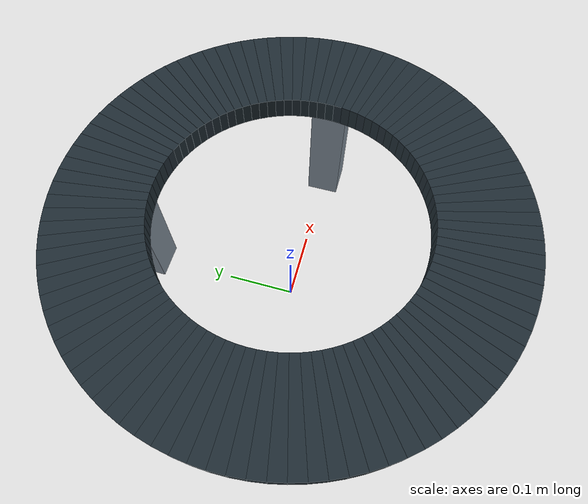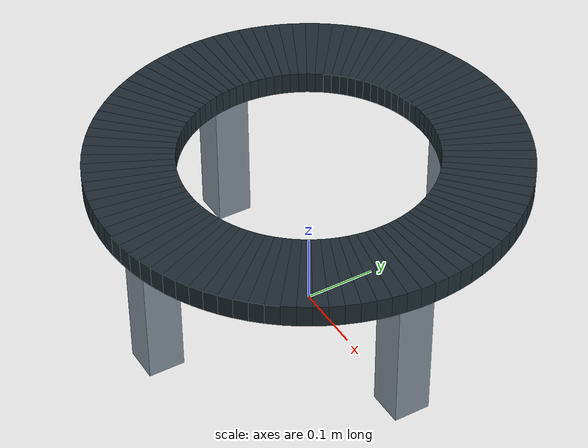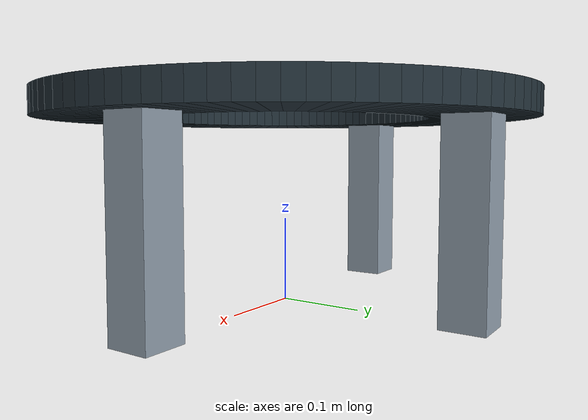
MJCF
<mujoco model="circular_conveyor">
  <compiler angle="radian" />
  <custom>
    <numeric name="conveyor_path_parameters" data="0.23 0.06" />
  </custom>
  <asset>
    <mesh name="belt_mesh_0" vertex="0.170000000 0.000000000 -0.015000000 0.290000000 0.000000000 -0.015000000 0.289379088 0.018966907 -0.015000000 0.169636017 0.011118532 -0.015000000 0.170000000 0.000000000 0.015000000 0.290000000 0.000000000 0.015000000 0.289379088 0.018966907 0.015000000 0.169636017 0.011118532 0.015000000" />
    <mesh name="belt_mesh_1" vertex="0.169636017 0.011118532 -0.015000000 0.289379088 0.018966907 -0.015000000 0.287519010 0.037852596 -0.015000000 0.168545626 0.022189453 -0.015000000 0.169636017 0.011118532 0.015000000 0.289379088 0.018966907 0.015000000 0.287519010 0.037852596 0.015000000 0.168545626 0.022189453 0.015000000" />
    <mesh name="belt_mesh_2" vertex="0.168545626 0.022189453 -0.015000000 0.287519010 0.037852596 -0.015000000 0.284427731 0.056576193 -0.015000000 0.166733498 0.033165355 -0.015000000 0.168545626 0.022189453 0.015000000 0.287519010 0.037852596 0.015000000 0.284427731 0.056576193 0.015000000 0.166733498 0.033165355 0.015000000" />
    <mesh name="belt_mesh_3" vertex="0.166733498 0.033165355 -0.015000000 0.284427731 0.056576193 -0.015000000 0.280118490 0.075057523 -0.015000000 0.164207390 0.043999238 -0.015000000 0.166733498 0.033165355 0.015000000 0.284427731 0.056576193 0.015000000 0.280118490 0.075057523 0.015000000 0.164207390 0.043999238 0.015000000" />
    <mesh name="belt_mesh_4" vertex="0.164207390 0.043999238 -0.015000000 0.280118490 0.075057523 -0.015000000 0.274609738 0.093217445 -0.015000000 0.160978122 0.054644709 -0.015000000 0.164207390 0.043999238 0.015000000 0.280118490 0.075057523 0.015000000 0.274609738 0.093217445 0.015000000 0.160978122 0.054644709 0.015000000" />
    <mesh name="belt_mesh_5" vertex="0.160978122 0.054644709 -0.015000000 0.274609738 0.093217445 -0.015000000 0.267925064 0.110978195 -0.015000000 0.157059521 0.065056184 -0.015000000 0.160978122 0.054644709 0.015000000 0.274609738 0.093217445 0.015000000 0.267925064 0.110978195 0.015000000 0.157059521 0.065056184 0.015000000" />
    <mesh name="belt_mesh_6" vertex="0.157059521 0.065056184 -0.015000000 0.267925064 0.110978195 -0.015000000 0.260093095 0.128263720 -0.015000000 0.152468366 0.075189077 -0.015000000 0.157059521 0.065056184 0.015000000 0.267925064 0.110978195 0.015000000 0.260093095 0.128263720 0.015000000 0.152468366 0.075189077 0.015000000" />
    <mesh name="belt_mesh_7" vertex="0.152468366 0.075189077 -0.015000000 0.260093095 0.128263720 -0.015000000 0.251147367 0.145000000 -0.015000000 0.147224319 0.085000000 -0.015000000 0.152468366 0.075189077 0.015000000 0.260093095 0.128263720 0.015000000 0.251147367 0.145000000 0.015000000 0.147224319 0.085000000 0.015000000" />
    <mesh name="belt_mesh_8" vertex="0.147224319 0.085000000 -0.015000000 0.251147367 0.145000000 -0.015000000 0.241126188 0.161115368 -0.015000000 0.141349834 0.094446940 -0.015000000 0.147224319 0.085000000 0.015000000 0.251147367 0.145000000 0.015000000 0.241126188 0.161115368 0.015000000 0.141349834 0.094446940 0.015000000" />
    <mesh name="belt_mesh_9" vertex="0.141349834 0.094446940 -0.015000000 0.241126188 0.161115368 -0.015000000 0.230072469 0.176540814 -0.015000000 0.134870068 0.103489443 -0.015000000 0.141349834 0.094446940 0.015000000 0.241126188 0.161115368 0.015000000 0.230072469 0.176540814 0.015000000 0.134870068 0.103489443 0.015000000" />
    <mesh name="belt_mesh_10" vertex="0.134870068 0.103489443 -0.015000000 0.230072469 0.176540814 -0.015000000 0.218033544 0.191210286 -0.015000000 0.127812767 0.112088789 -0.015000000 0.134870068 0.103489443 0.015000000 0.230072469 0.176540814 0.015000000 0.218033544 0.191210286 0.015000000 0.127812767 0.112088789 0.015000000" />
    <mesh name="belt_mesh_11" vertex="0.127812767 0.112088789 -0.015000000 0.218033544 0.191210286 -0.015000000 0.205060967 0.205060967 -0.015000000 0.120208153 0.120208153 -0.015000000 0.127812767 0.112088789 0.015000000 0.218033544 0.191210286 0.015000000 0.205060967 0.205060967 0.015000000 0.120208153 0.120208153 0.015000000" />
    <mesh name="belt_mesh_12" vertex="0.120208153 0.120208153 -0.015000000 0.205060967 0.205060967 -0.015000000 0.191210286 0.218033544 -0.015000000 0.112088789 0.127812767 -0.015000000 0.120208153 0.120208153 0.015000000 0.205060967 0.205060967 0.015000000 0.191210286 0.218033544 0.015000000 0.112088789 0.127812767 0.015000000" />
    <mesh name="belt_mesh_13" vertex="0.112088789 0.127812767 -0.015000000 0.191210286 0.218033544 -0.015000000 0.176540814 0.230072469 -0.015000000 0.103489443 0.134870068 -0.015000000 0.112088789 0.127812767 0.015000000 0.191210286 0.218033544 0.015000000 0.176540814 0.230072469 0.015000000 0.103489443 0.134870068 0.015000000" />
    <mesh name="belt_mesh_14" vertex="0.103489443 0.134870068 -0.015000000 0.176540814 0.230072469 -0.015000000 0.161115368 0.241126188 -0.015000000 0.094446940 0.141349834 -0.015000000 0.103489443 0.134870068 0.015000000 0.176540814 0.230072469 0.015000000 0.161115368 0.241126188 0.015000000 0.094446940 0.141349834 0.015000000" />
    <mesh name="belt_mesh_15" vertex="0.094446940 0.141349834 -0.015000000 0.161115368 0.241126188 -0.015000000 0.145000000 0.251147367 -0.015000000 0.085000000 0.147224319 -0.015000000 0.094446940 0.141349834 0.015000000 0.161115368 0.241126188 0.015000000 0.145000000 0.251147367 0.015000000 0.085000000 0.147224319 0.015000000" />
    <mesh name="belt_mesh_16" vertex="0.085000000 0.147224319 -0.015000000 0.145000000 0.251147367 -0.015000000 0.128263720 0.260093095 -0.015000000 0.075189077 0.152468366 -0.015000000 0.085000000 0.147224319 0.015000000 0.145000000 0.251147367 0.015000000 0.128263720 0.260093095 0.015000000 0.075189077 0.152468366 0.015000000" />
    <mesh name="belt_mesh_17" vertex="0.075189077 0.152468366 -0.015000000 0.128263720 0.260093095 -0.015000000 0.110978195 0.267925064 -0.015000000 0.065056184 0.157059521 -0.015000000 0.075189077 0.152468366 0.015000000 0.128263720 0.260093095 0.015000000 0.110978195 0.267925064 0.015000000 0.065056184 0.157059521 0.015000000" />
    <mesh name="belt_mesh_18" vertex="0.065056184 0.157059521 -0.015000000 0.110978195 0.267925064 -0.015000000 0.093217445 0.274609738 -0.015000000 0.054644709 0.160978122 -0.015000000 0.065056184 0.157059521 0.015000000 0.110978195 0.267925064 0.015000000 0.093217445 0.274609738 0.015000000 0.054644709 0.160978122 0.015000000" />
    <mesh name="belt_mesh_19" vertex="0.054644709 0.160978122 -0.015000000 0.093217445 0.274609738 -0.015000000 0.075057523 0.280118490 -0.015000000 0.043999238 0.164207390 -0.015000000 0.054644709 0.160978122 0.015000000 0.093217445 0.274609738 0.015000000 0.075057523 0.280118490 0.015000000 0.043999238 0.164207390 0.015000000" />
    <mesh name="belt_mesh_20" vertex="0.043999238 0.164207390 -0.015000000 0.075057523 0.280118490 -0.015000000 0.056576193 0.284427731 -0.015000000 0.033165355 0.166733498 -0.015000000 0.043999238 0.164207390 0.015000000 0.075057523 0.280118490 0.015000000 0.056576193 0.284427731 0.015000000 0.033165355 0.166733498 0.015000000" />
    <mesh name="belt_mesh_21" vertex="0.033165355 0.166733498 -0.015000000 0.056576193 0.284427731 -0.015000000 0.037852596 0.287519010 -0.015000000 0.022189453 0.168545626 -0.015000000 0.033165355 0.166733498 0.015000000 0.056576193 0.284427731 0.015000000 0.037852596 0.287519010 0.015000000 0.022189453 0.168545626 0.015000000" />
    <mesh name="belt_mesh_22" vertex="0.022189453 0.168545626 -0.015000000 0.037852596 0.287519010 -0.015000000 0.018966907 0.289379088 -0.015000000 0.011118532 0.169636017 -0.015000000 0.022189453 0.168545626 0.015000000 0.037852596 0.287519010 0.015000000 0.018966907 0.289379088 0.015000000 0.011118532 0.169636017 0.015000000" />
    <mesh name="belt_mesh_23" vertex="0.011118532 0.169636017 -0.015000000 0.018966907 0.289379088 -0.015000000 0.000000000 0.290000000 -0.015000000 0.000000000 0.170000000 -0.015000000 0.011118532 0.169636017 0.015000000 0.018966907 0.289379088 0.015000000 0.000000000 0.290000000 0.015000000 0.000000000 0.170000000 0.015000000" />
    <mesh name="belt_mesh_24" vertex="0.000000000 0.170000000 -0.015000000 0.000000000 0.290000000 -0.015000000 -0.018966907 0.289379088 -0.015000000 -0.011118532 0.169636017 -0.015000000 0.000000000 0.170000000 0.015000000 0.000000000 0.290000000 0.015000000 -0.018966907 0.289379088 0.015000000 -0.011118532 0.169636017 0.015000000" />
    <mesh name="belt_mesh_25" vertex="-0.011118532 0.169636017 -0.015000000 -0.018966907 0.289379088 -0.015000000 -0.037852596 0.287519010 -0.015000000 -0.022189453 0.168545626 -0.015000000 -0.011118532 0.169636017 0.015000000 -0.018966907 0.289379088 0.015000000 -0.037852596 0.287519010 0.015000000 -0.022189453 0.168545626 0.015000000" />
    <mesh name="belt_mesh_26" vertex="-0.022189453 0.168545626 -0.015000000 -0.037852596 0.287519010 -0.015000000 -0.056576193 0.284427731 -0.015000000 -0.033165355 0.166733498 -0.015000000 -0.022189453 0.168545626 0.015000000 -0.037852596 0.287519010 0.015000000 -0.056576193 0.284427731 0.015000000 -0.033165355 0.166733498 0.015000000" />
    <mesh name="belt_mesh_27" vertex="-0.033165355 0.166733498 -0.015000000 -0.056576193 0.284427731 -0.015000000 -0.075057523 0.280118490 -0.015000000 -0.043999238 0.164207390 -0.015000000 -0.033165355 0.166733498 0.015000000 -0.056576193 0.284427731 0.015000000 -0.075057523 0.280118490 0.015000000 -0.043999238 0.164207390 0.015000000" />
    <mesh name="belt_mesh_28" vertex="-0.043999238 0.164207390 -0.015000000 -0.075057523 0.280118490 -0.015000000 -0.093217445 0.274609738 -0.015000000 -0.054644709 0.160978122 -0.015000000 -0.043999238 0.164207390 0.015000000 -0.075057523 0.280118490 0.015000000 -0.093217445 0.274609738 0.015000000 -0.054644709 0.160978122 0.015000000" />
    <mesh name="belt_mesh_29" vertex="-0.054644709 0.160978122 -0.015000000 -0.093217445 0.274609738 -0.015000000 -0.110978195 0.267925064 -0.015000000 -0.065056184 0.157059521 -0.015000000 -0.054644709 0.160978122 0.015000000 -0.093217445 0.274609738 0.015000000 -0.110978195 0.267925064 0.015000000 -0.065056184 0.157059521 0.015000000" />
    <mesh name="belt_mesh_30" vertex="-0.065056184 0.157059521 -0.015000000 -0.110978195 0.267925064 -0.015000000 -0.128263720 0.260093095 -0.015000000 -0.075189077 0.152468366 -0.015000000 -0.065056184 0.157059521 0.015000000 -0.110978195 0.267925064 0.015000000 -0.128263720 0.260093095 0.015000000 -0.075189077 0.152468366 0.015000000" />
    <mesh name="belt_mesh_31" vertex="-0.075189077 0.152468366 -0.015000000 -0.128263720 0.260093095 -0.015000000 -0.145000000 0.251147367 -0.015000000 -0.085000000 0.147224319 -0.015000000 -0.075189077 0.152468366 0.015000000 -0.128263720 0.260093095 0.015000000 -0.145000000 0.251147367 0.015000000 -0.085000000 0.147224319 0.015000000" />
    <mesh name="belt_mesh_32" vertex="-0.085000000 0.147224319 -0.015000000 -0.145000000 0.251147367 -0.015000000 -0.161115368 0.241126188 -0.015000000 -0.094446940 0.141349834 -0.015000000 -0.085000000 0.147224319 0.015000000 -0.145000000 0.251147367 0.015000000 -0.161115368 0.241126188 0.015000000 -0.094446940 0.141349834 0.015000000" />
    <mesh name="belt_mesh_33" vertex="-0.094446940 0.141349834 -0.015000000 -0.161115368 0.241126188 -0.015000000 -0.176540814 0.230072469 -0.015000000 -0.103489443 0.134870068 -0.015000000 -0.094446940 0.141349834 0.015000000 -0.161115368 0.241126188 0.015000000 -0.176540814 0.230072469 0.015000000 -0.103489443 0.134870068 0.015000000" />
    <mesh name="belt_mesh_34" vertex="-0.103489443 0.134870068 -0.015000000 -0.176540814 0.230072469 -0.015000000 -0.191210286 0.218033544 -0.015000000 -0.112088789 0.127812767 -0.015000000 -0.103489443 0.134870068 0.015000000 -0.176540814 0.230072469 0.015000000 -0.191210286 0.218033544 0.015000000 -0.112088789 0.127812767 0.015000000" />
    <mesh name="belt_mesh_35" vertex="-0.112088789 0.127812767 -0.015000000 -0.191210286 0.218033544 -0.015000000 -0.205060967 0.205060967 -0.015000000 -0.120208153 0.120208153 -0.015000000 -0.112088789 0.127812767 0.015000000 -0.191210286 0.218033544 0.015000000 -0.205060967 0.205060967 0.015000000 -0.120208153 0.120208153 0.015000000" />
    <mesh name="belt_mesh_36" vertex="-0.120208153 0.120208153 -0.015000000 -0.205060967 0.205060967 -0.015000000 -0.218033544 0.191210286 -0.015000000 -0.127812767 0.112088789 -0.015000000 -0.120208153 0.120208153 0.015000000 -0.205060967 0.205060967 0.015000000 -0.218033544 0.191210286 0.015000000 -0.127812767 0.112088789 0.015000000" />
    <mesh name="belt_mesh_37" vertex="-0.127812767 0.112088789 -0.015000000 -0.218033544 0.191210286 -0.015000000 -0.230072469 0.176540814 -0.015000000 -0.134870068 0.103489443 -0.015000000 -0.127812767 0.112088789 0.015000000 -0.218033544 0.191210286 0.015000000 -0.230072469 0.176540814 0.015000000 -0.134870068 0.103489443 0.015000000" />
    <mesh name="belt_mesh_38" vertex="-0.134870068 0.103489443 -0.015000000 -0.230072469 0.176540814 -0.015000000 -0.241126188 0.161115368 -0.015000000 -0.141349834 0.094446940 -0.015000000 -0.134870068 0.103489443 0.015000000 -0.230072469 0.176540814 0.015000000 -0.241126188 0.161115368 0.015000000 -0.141349834 0.094446940 0.015000000" />
    <mesh name="belt_mesh_39" vertex="-0.141349834 0.094446940 -0.015000000 -0.241126188 0.161115368 -0.015000000 -0.251147367 0.145000000 -0.015000000 -0.147224319 0.085000000 -0.015000000 -0.141349834 0.094446940 0.015000000 -0.241126188 0.161115368 0.015000000 -0.251147367 0.145000000 0.015000000 -0.147224319 0.085000000 0.015000000" />
    <mesh name="belt_mesh_40" vertex="-0.147224319 0.085000000 -0.015000000 -0.251147367 0.145000000 -0.015000000 -0.260093095 0.128263720 -0.015000000 -0.152468366 0.075189077 -0.015000000 -0.147224319 0.085000000 0.015000000 -0.251147367 0.145000000 0.015000000 -0.260093095 0.128263720 0.015000000 -0.152468366 0.075189077 0.015000000" />
    <mesh name="belt_mesh_41" vertex="-0.152468366 0.075189077 -0.015000000 -0.260093095 0.128263720 -0.015000000 -0.267925064 0.110978195 -0.015000000 -0.157059521 0.065056184 -0.015000000 -0.152468366 0.075189077 0.015000000 -0.260093095 0.128263720 0.015000000 -0.267925064 0.110978195 0.015000000 -0.157059521 0.065056184 0.015000000" />
    <mesh name="belt_mesh_42" vertex="-0.157059521 0.065056184 -0.015000000 -0.267925064 0.110978195 -0.015000000 -0.274609738 0.093217445 -0.015000000 -0.160978122 0.054644709 -0.015000000 -0.157059521 0.065056184 0.015000000 -0.267925064 0.110978195 0.015000000 -0.274609738 0.093217445 0.015000000 -0.160978122 0.054644709 0.015000000" />
    <mesh name="belt_mesh_43" vertex="-0.160978122 0.054644709 -0.015000000 -0.274609738 0.093217445 -0.015000000 -0.280118490 0.075057523 -0.015000000 -0.164207390 0.043999238 -0.015000000 -0.160978122 0.054644709 0.015000000 -0.274609738 0.093217445 0.015000000 -0.280118490 0.075057523 0.015000000 -0.164207390 0.043999238 0.015000000" />
    <mesh name="belt_mesh_44" vertex="-0.164207390 0.043999238 -0.015000000 -0.280118490 0.075057523 -0.015000000 -0.284427731 0.056576193 -0.015000000 -0.166733498 0.033165355 -0.015000000 -0.164207390 0.043999238 0.015000000 -0.280118490 0.075057523 0.015000000 -0.284427731 0.056576193 0.015000000 -0.166733498 0.033165355 0.015000000" />
    <mesh name="belt_mesh_45" vertex="-0.166733498 0.033165355 -0.015000000 -0.284427731 0.056576193 -0.015000000 -0.287519010 0.037852596 -0.015000000 -0.168545626 0.022189453 -0.015000000 -0.166733498 0.033165355 0.015000000 -0.284427731 0.056576193 0.015000000 -0.287519010 0.037852596 0.015000000 -0.168545626 0.022189453 0.015000000" />
    <mesh name="belt_mesh_46" vertex="-0.168545626 0.022189453 -0.015000000 -0.287519010 0.037852596 -0.015000000 -0.289379088 0.018966907 -0.015000000 -0.169636017 0.011118532 -0.015000000 -0.168545626 0.022189453 0.015000000 -0.287519010 0.037852596 0.015000000 -0.289379088 0.018966907 0.015000000 -0.169636017 0.011118532 0.015000000" />
    <mesh name="belt_mesh_47" vertex="-0.169636017 0.011118532 -0.015000000 -0.289379088 0.018966907 -0.015000000 -0.290000000 0.000000000 -0.015000000 -0.170000000 0.000000000 -0.015000000 -0.169636017 0.011118532 0.015000000 -0.289379088 0.018966907 0.015000000 -0.290000000 0.000000000 0.015000000 -0.170000000 0.000000000 0.015000000" />
    <mesh name="belt_mesh_48" vertex="-0.170000000 0.000000000 -0.015000000 -0.290000000 0.000000000 -0.015000000 -0.289379088 -0.018966907 -0.015000000 -0.169636017 -0.011118532 -0.015000000 -0.170000000 0.000000000 0.015000000 -0.290000000 0.000000000 0.015000000 -0.289379088 -0.018966907 0.015000000 -0.169636017 -0.011118532 0.015000000" />
    <mesh name="belt_mesh_49" vertex="-0.169636017 -0.011118532 -0.015000000 -0.289379088 -0.018966907 -0.015000000 -0.287519010 -0.037852596 -0.015000000 -0.168545626 -0.022189453 -0.015000000 -0.169636017 -0.011118532 0.015000000 -0.289379088 -0.018966907 0.015000000 -0.287519010 -0.037852596 0.015000000 -0.168545626 -0.022189453 0.015000000" />
    <mesh name="belt_mesh_50" vertex="-0.168545626 -0.022189453 -0.015000000 -0.287519010 -0.037852596 -0.015000000 -0.284427731 -0.056576193 -0.015000000 -0.166733498 -0.033165355 -0.015000000 -0.168545626 -0.022189453 0.015000000 -0.287519010 -0.037852596 0.015000000 -0.284427731 -0.056576193 0.015000000 -0.166733498 -0.033165355 0.015000000" />
    <mesh name="belt_mesh_51" vertex="-0.166733498 -0.033165355 -0.015000000 -0.284427731 -0.056576193 -0.015000000 -0.280118490 -0.075057523 -0.015000000 -0.164207390 -0.043999238 -0.015000000 -0.166733498 -0.033165355 0.015000000 -0.284427731 -0.056576193 0.015000000 -0.280118490 -0.075057523 0.015000000 -0.164207390 -0.043999238 0.015000000" />
    <mesh name="belt_mesh_52" vertex="-0.164207390 -0.043999238 -0.015000000 -0.280118490 -0.075057523 -0.015000000 -0.274609738 -0.093217445 -0.015000000 -0.160978122 -0.054644709 -0.015000000 -0.164207390 -0.043999238 0.015000000 -0.280118490 -0.075057523 0.015000000 -0.274609738 -0.093217445 0.015000000 -0.160978122 -0.054644709 0.015000000" />
    <mesh name="belt_mesh_53" vertex="-0.160978122 -0.054644709 -0.015000000 -0.274609738 -0.093217445 -0.015000000 -0.267925064 -0.110978195 -0.015000000 -0.157059521 -0.065056184 -0.015000000 -0.160978122 -0.054644709 0.015000000 -0.274609738 -0.093217445 0.015000000 -0.267925064 -0.110978195 0.015000000 -0.157059521 -0.065056184 0.015000000" />
    <mesh name="belt_mesh_54" vertex="-0.157059521 -0.065056184 -0.015000000 -0.267925064 -0.110978195 -0.015000000 -0.260093095 -0.128263720 -0.015000000 -0.152468366 -0.075189077 -0.015000000 -0.157059521 -0.065056184 0.015000000 -0.267925064 -0.110978195 0.015000000 -0.260093095 -0.128263720 0.015000000 -0.152468366 -0.075189077 0.015000000" />
    <mesh name="belt_mesh_55" vertex="-0.152468366 -0.075189077 -0.015000000 -0.260093095 -0.128263720 -0.015000000 -0.251147367 -0.145000000 -0.015000000 -0.147224319 -0.085000000 -0.015000000 -0.152468366 -0.075189077 0.015000000 -0.260093095 -0.128263720 0.015000000 -0.251147367 -0.145000000 0.015000000 -0.147224319 -0.085000000 0.015000000" />
    <mesh name="belt_mesh_56" vertex="-0.147224319 -0.085000000 -0.015000000 -0.251147367 -0.145000000 -0.015000000 -0.241126188 -0.161115368 -0.015000000 -0.141349834 -0.094446940 -0.015000000 -0.147224319 -0.085000000 0.015000000 -0.251147367 -0.145000000 0.015000000 -0.241126188 -0.161115368 0.015000000 -0.141349834 -0.094446940 0.015000000" />
    <mesh name="belt_mesh_57" vertex="-0.141349834 -0.094446940 -0.015000000 -0.241126188 -0.161115368 -0.015000000 -0.230072469 -0.176540814 -0.015000000 -0.134870068 -0.103489443 -0.015000000 -0.141349834 -0.094446940 0.015000000 -0.241126188 -0.161115368 0.015000000 -0.230072469 -0.176540814 0.015000000 -0.134870068 -0.103489443 0.015000000" />
    <mesh name="belt_mesh_58" vertex="-0.134870068 -0.103489443 -0.015000000 -0.230072469 -0.176540814 -0.015000000 -0.218033544 -0.191210286 -0.015000000 -0.127812767 -0.112088789 -0.015000000 -0.134870068 -0.103489443 0.015000000 -0.230072469 -0.176540814 0.015000000 -0.218033544 -0.191210286 0.015000000 -0.127812767 -0.112088789 0.015000000" />
    <mesh name="belt_mesh_59" vertex="-0.127812767 -0.112088789 -0.015000000 -0.218033544 -0.191210286 -0.015000000 -0.205060967 -0.205060967 -0.015000000 -0.120208153 -0.120208153 -0.015000000 -0.127812767 -0.112088789 0.015000000 -0.218033544 -0.191210286 0.015000000 -0.205060967 -0.205060967 0.015000000 -0.120208153 -0.120208153 0.015000000" />
    <mesh name="belt_mesh_60" vertex="-0.120208153 -0.120208153 -0.015000000 -0.205060967 -0.205060967 -0.015000000 -0.191210286 -0.218033544 -0.015000000 -0.112088789 -0.127812767 -0.015000000 -0.120208153 -0.120208153 0.015000000 -0.205060967 -0.205060967 0.015000000 -0.191210286 -0.218033544 0.015000000 -0.112088789 -0.127812767 0.015000000" />
    <mesh name="belt_mesh_61" vertex="-0.112088789 -0.127812767 -0.015000000 -0.191210286 -0.218033544 -0.015000000 -0.176540814 -0.230072469 -0.015000000 -0.103489443 -0.134870068 -0.015000000 -0.112088789 -0.127812767 0.015000000 -0.191210286 -0.218033544 0.015000000 -0.176540814 -0.230072469 0.015000000 -0.103489443 -0.134870068 0.015000000" />
    <mesh name="belt_mesh_62" vertex="-0.103489443 -0.134870068 -0.015000000 -0.176540814 -0.230072469 -0.015000000 -0.161115368 -0.241126188 -0.015000000 -0.094446940 -0.141349834 -0.015000000 -0.103489443 -0.134870068 0.015000000 -0.176540814 -0.230072469 0.015000000 -0.161115368 -0.241126188 0.015000000 -0.094446940 -0.141349834 0.015000000" />
    <mesh name="belt_mesh_63" vertex="-0.094446940 -0.141349834 -0.015000000 -0.161115368 -0.241126188 -0.015000000 -0.145000000 -0.251147367 -0.015000000 -0.085000000 -0.147224319 -0.015000000 -0.094446940 -0.141349834 0.015000000 -0.161115368 -0.241126188 0.015000000 -0.145000000 -0.251147367 0.015000000 -0.085000000 -0.147224319 0.015000000" />
    <mesh name="belt_mesh_64" vertex="-0.085000000 -0.147224319 -0.015000000 -0.145000000 -0.251147367 -0.015000000 -0.128263720 -0.260093095 -0.015000000 -0.075189077 -0.152468366 -0.015000000 -0.085000000 -0.147224319 0.015000000 -0.145000000 -0.251147367 0.015000000 -0.128263720 -0.260093095 0.015000000 -0.075189077 -0.152468366 0.015000000" />
    <mesh name="belt_mesh_65" vertex="-0.075189077 -0.152468366 -0.015000000 -0.128263720 -0.260093095 -0.015000000 -0.110978195 -0.267925064 -0.015000000 -0.065056184 -0.157059521 -0.015000000 -0.075189077 -0.152468366 0.015000000 -0.128263720 -0.260093095 0.015000000 -0.110978195 -0.267925064 0.015000000 -0.065056184 -0.157059521 0.015000000" />
    <mesh name="belt_mesh_66" vertex="-0.065056184 -0.157059521 -0.015000000 -0.110978195 -0.267925064 -0.015000000 -0.093217445 -0.274609738 -0.015000000 -0.054644709 -0.160978122 -0.015000000 -0.065056184 -0.157059521 0.015000000 -0.110978195 -0.267925064 0.015000000 -0.093217445 -0.274609738 0.015000000 -0.054644709 -0.160978122 0.015000000" />
    <mesh name="belt_mesh_67" vertex="-0.054644709 -0.160978122 -0.015000000 -0.093217445 -0.274609738 -0.015000000 -0.075057523 -0.280118490 -0.015000000 -0.043999238 -0.164207390 -0.015000000 -0.054644709 -0.160978122 0.015000000 -0.093217445 -0.274609738 0.015000000 -0.075057523 -0.280118490 0.015000000 -0.043999238 -0.164207390 0.015000000" />
    <mesh name="belt_mesh_68" vertex="-0.043999238 -0.164207390 -0.015000000 -0.075057523 -0.280118490 -0.015000000 -0.056576193 -0.284427731 -0.015000000 -0.033165355 -0.166733498 -0.015000000 -0.043999238 -0.164207390 0.015000000 -0.075057523 -0.280118490 0.015000000 -0.056576193 -0.284427731 0.015000000 -0.033165355 -0.166733498 0.015000000" />
    <mesh name="belt_mesh_69" vertex="-0.033165355 -0.166733498 -0.015000000 -0.056576193 -0.284427731 -0.015000000 -0.037852596 -0.287519010 -0.015000000 -0.022189453 -0.168545626 -0.015000000 -0.033165355 -0.166733498 0.015000000 -0.056576193 -0.284427731 0.015000000 -0.037852596 -0.287519010 0.015000000 -0.022189453 -0.168545626 0.015000000" />
    <mesh name="belt_mesh_70" vertex="-0.022189453 -0.168545626 -0.015000000 -0.037852596 -0.287519010 -0.015000000 -0.018966907 -0.289379088 -0.015000000 -0.011118532 -0.169636017 -0.015000000 -0.022189453 -0.168545626 0.015000000 -0.037852596 -0.287519010 0.015000000 -0.018966907 -0.289379088 0.015000000 -0.011118532 -0.169636017 0.015000000" />
    <mesh name="belt_mesh_71" vertex="-0.011118532 -0.169636017 -0.015000000 -0.018966907 -0.289379088 -0.015000000 -0.000000000 -0.290000000 -0.015000000 -0.000000000 -0.170000000 -0.015000000 -0.011118532 -0.169636017 0.015000000 -0.018966907 -0.289379088 0.015000000 -0.000000000 -0.290000000 0.015000000 -0.000000000 -0.170000000 0.015000000" />
    <mesh name="belt_mesh_72" vertex="-0.000000000 -0.170000000 -0.015000000 -0.000000000 -0.290000000 -0.015000000 0.018966907 -0.289379088 -0.015000000 0.011118532 -0.169636017 -0.015000000 -0.000000000 -0.170000000 0.015000000 -0.000000000 -0.290000000 0.015000000 0.018966907 -0.289379088 0.015000000 0.011118532 -0.169636017 0.015000000" />
    <mesh name="belt_mesh_73" vertex="0.011118532 -0.169636017 -0.015000000 0.018966907 -0.289379088 -0.015000000 0.037852596 -0.287519010 -0.015000000 0.022189453 -0.168545626 -0.015000000 0.011118532 -0.169636017 0.015000000 0.018966907 -0.289379088 0.015000000 0.037852596 -0.287519010 0.015000000 0.022189453 -0.168545626 0.015000000" />
    <mesh name="belt_mesh_74" vertex="0.022189453 -0.168545626 -0.015000000 0.037852596 -0.287519010 -0.015000000 0.056576193 -0.284427731 -0.015000000 0.033165355 -0.166733498 -0.015000000 0.022189453 -0.168545626 0.015000000 0.037852596 -0.287519010 0.015000000 0.056576193 -0.284427731 0.015000000 0.033165355 -0.166733498 0.015000000" />
    <mesh name="belt_mesh_75" vertex="0.033165355 -0.166733498 -0.015000000 0.056576193 -0.284427731 -0.015000000 0.075057523 -0.280118490 -0.015000000 0.043999238 -0.164207390 -0.015000000 0.033165355 -0.166733498 0.015000000 0.056576193 -0.284427731 0.015000000 0.075057523 -0.280118490 0.015000000 0.043999238 -0.164207390 0.015000000" />
    <mesh name="belt_mesh_76" vertex="0.043999238 -0.164207390 -0.015000000 0.075057523 -0.280118490 -0.015000000 0.093217445 -0.274609738 -0.015000000 0.054644709 -0.160978122 -0.015000000 0.043999238 -0.164207390 0.015000000 0.075057523 -0.280118490 0.015000000 0.093217445 -0.274609738 0.015000000 0.054644709 -0.160978122 0.015000000" />
    <mesh name="belt_mesh_77" vertex="0.054644709 -0.160978122 -0.015000000 0.093217445 -0.274609738 -0.015000000 0.110978195 -0.267925064 -0.015000000 0.065056184 -0.157059521 -0.015000000 0.054644709 -0.160978122 0.015000000 0.093217445 -0.274609738 0.015000000 0.110978195 -0.267925064 0.015000000 0.065056184 -0.157059521 0.015000000" />
    <mesh name="belt_mesh_78" vertex="0.065056184 -0.157059521 -0.015000000 0.110978195 -0.267925064 -0.015000000 0.128263720 -0.260093095 -0.015000000 0.075189077 -0.152468366 -0.015000000 0.065056184 -0.157059521 0.015000000 0.110978195 -0.267925064 0.015000000 0.128263720 -0.260093095 0.015000000 0.075189077 -0.152468366 0.015000000" />
    <mesh name="belt_mesh_79" vertex="0.075189077 -0.152468366 -0.015000000 0.128263720 -0.260093095 -0.015000000 0.145000000 -0.251147367 -0.015000000 0.085000000 -0.147224319 -0.015000000 0.075189077 -0.152468366 0.015000000 0.128263720 -0.260093095 0.015000000 0.145000000 -0.251147367 0.015000000 0.085000000 -0.147224319 0.015000000" />
    <mesh name="belt_mesh_80" vertex="0.085000000 -0.147224319 -0.015000000 0.145000000 -0.251147367 -0.015000000 0.161115368 -0.241126188 -0.015000000 0.094446940 -0.141349834 -0.015000000 0.085000000 -0.147224319 0.015000000 0.145000000 -0.251147367 0.015000000 0.161115368 -0.241126188 0.015000000 0.094446940 -0.141349834 0.015000000" />
    <mesh name="belt_mesh_81" vertex="0.094446940 -0.141349834 -0.015000000 0.161115368 -0.241126188 -0.015000000 0.176540814 -0.230072469 -0.015000000 0.103489443 -0.134870068 -0.015000000 0.094446940 -0.141349834 0.015000000 0.161115368 -0.241126188 0.015000000 0.176540814 -0.230072469 0.015000000 0.103489443 -0.134870068 0.015000000" />
    <mesh name="belt_mesh_82" vertex="0.103489443 -0.134870068 -0.015000000 0.176540814 -0.230072469 -0.015000000 0.191210286 -0.218033544 -0.015000000 0.112088789 -0.127812767 -0.015000000 0.103489443 -0.134870068 0.015000000 0.176540814 -0.230072469 0.015000000 0.191210286 -0.218033544 0.015000000 0.112088789 -0.127812767 0.015000000" />
    <mesh name="belt_mesh_83" vertex="0.112088789 -0.127812767 -0.015000000 0.191210286 -0.218033544 -0.015000000 0.205060967 -0.205060967 -0.015000000 0.120208153 -0.120208153 -0.015000000 0.112088789 -0.127812767 0.015000000 0.191210286 -0.218033544 0.015000000 0.205060967 -0.205060967 0.015000000 0.120208153 -0.120208153 0.015000000" />
    <mesh name="belt_mesh_84" vertex="0.120208153 -0.120208153 -0.015000000 0.205060967 -0.205060967 -0.015000000 0.218033544 -0.191210286 -0.015000000 0.127812767 -0.112088789 -0.015000000 0.120208153 -0.120208153 0.015000000 0.205060967 -0.205060967 0.015000000 0.218033544 -0.191210286 0.015000000 0.127812767 -0.112088789 0.015000000" />
    <mesh name="belt_mesh_85" vertex="0.127812767 -0.112088789 -0.015000000 0.218033544 -0.191210286 -0.015000000 0.230072469 -0.176540814 -0.015000000 0.134870068 -0.103489443 -0.015000000 0.127812767 -0.112088789 0.015000000 0.218033544 -0.191210286 0.015000000 0.230072469 -0.176540814 0.015000000 0.134870068 -0.103489443 0.015000000" />
    <mesh name="belt_mesh_86" vertex="0.134870068 -0.103489443 -0.015000000 0.230072469 -0.176540814 -0.015000000 0.241126188 -0.161115368 -0.015000000 0.141349834 -0.094446940 -0.015000000 0.134870068 -0.103489443 0.015000000 0.230072469 -0.176540814 0.015000000 0.241126188 -0.161115368 0.015000000 0.141349834 -0.094446940 0.015000000" />
    <mesh name="belt_mesh_87" vertex="0.141349834 -0.094446940 -0.015000000 0.241126188 -0.161115368 -0.015000000 0.251147367 -0.145000000 -0.015000000 0.147224319 -0.085000000 -0.015000000 0.141349834 -0.094446940 0.015000000 0.241126188 -0.161115368 0.015000000 0.251147367 -0.145000000 0.015000000 0.147224319 -0.085000000 0.015000000" />
    <mesh name="belt_mesh_88" vertex="0.147224319 -0.085000000 -0.015000000 0.251147367 -0.145000000 -0.015000000 0.260093095 -0.128263720 -0.015000000 0.152468366 -0.075189077 -0.015000000 0.147224319 -0.085000000 0.015000000 0.251147367 -0.145000000 0.015000000 0.260093095 -0.128263720 0.015000000 0.152468366 -0.075189077 0.015000000" />
    <mesh name="belt_mesh_89" vertex="0.152468366 -0.075189077 -0.015000000 0.260093095 -0.128263720 -0.015000000 0.267925064 -0.110978195 -0.015000000 0.157059521 -0.065056184 -0.015000000 0.152468366 -0.075189077 0.015000000 0.260093095 -0.128263720 0.015000000 0.267925064 -0.110978195 0.015000000 0.157059521 -0.065056184 0.015000000" />
    <mesh name="belt_mesh_90" vertex="0.157059521 -0.065056184 -0.015000000 0.267925064 -0.110978195 -0.015000000 0.274609738 -0.093217445 -0.015000000 0.160978122 -0.054644709 -0.015000000 0.157059521 -0.065056184 0.015000000 0.267925064 -0.110978195 0.015000000 0.274609738 -0.093217445 0.015000000 0.160978122 -0.054644709 0.015000000" />
    <mesh name="belt_mesh_91" vertex="0.160978122 -0.054644709 -0.015000000 0.274609738 -0.093217445 -0.015000000 0.280118490 -0.075057523 -0.015000000 0.164207390 -0.043999238 -0.015000000 0.160978122 -0.054644709 0.015000000 0.274609738 -0.093217445 0.015000000 0.280118490 -0.075057523 0.015000000 0.164207390 -0.043999238 0.015000000" />
    <mesh name="belt_mesh_92" vertex="0.164207390 -0.043999238 -0.015000000 0.280118490 -0.075057523 -0.015000000 0.284427731 -0.056576193 -0.015000000 0.166733498 -0.033165355 -0.015000000 0.164207390 -0.043999238 0.015000000 0.280118490 -0.075057523 0.015000000 0.284427731 -0.056576193 0.015000000 0.166733498 -0.033165355 0.015000000" />
    <mesh name="belt_mesh_93" vertex="0.166733498 -0.033165355 -0.015000000 0.284427731 -0.056576193 -0.015000000 0.287519010 -0.037852596 -0.015000000 0.168545626 -0.022189453 -0.015000000 0.166733498 -0.033165355 0.015000000 0.284427731 -0.056576193 0.015000000 0.287519010 -0.037852596 0.015000000 0.168545626 -0.022189453 0.015000000" />
    <mesh name="belt_mesh_94" vertex="0.168545626 -0.022189453 -0.015000000 0.287519010 -0.037852596 -0.015000000 0.289379088 -0.018966907 -0.015000000 0.169636017 -0.011118532 -0.015000000 0.168545626 -0.022189453 0.015000000 0.287519010 -0.037852596 0.015000000 0.289379088 -0.018966907 0.015000000 0.169636017 -0.011118532 0.015000000" />
    <mesh name="belt_mesh_95" vertex="0.169636017 -0.011118532 -0.015000000 0.289379088 -0.018966907 -0.015000000 0.290000000 -0.000000000 -0.015000000 0.170000000 -0.000000000 -0.015000000 0.169636017 -0.011118532 0.015000000 0.289379088 -0.018966907 0.015000000 0.290000000 -0.000000000 0.015000000 0.170000000 -0.000000000 0.015000000" />
  </asset>
  <worldbody>
    <body name="conveyor">
      <site name="conveyor_origin" size="0.002" rgba="0 0 0 0" />
      <!--Fixed surface: conveyor.py supplies contact-gated transport forces.-->
      <geom name="conveyor_belt_0" type="mesh" mesh="belt_mesh_0" pos="0 0 0.235" friction="0.8 0.005 0.0001" rgba="0.12 0.17 0.20 1" />
      <geom name="conveyor_belt_1" type="mesh" mesh="belt_mesh_1" pos="0 0 0.235" friction="0.8 0.005 0.0001" rgba="0.12 0.17 0.20 1" />
      <geom name="conveyor_belt_2" type="mesh" mesh="belt_mesh_2" pos="0 0 0.235" friction="0.8 0.005 0.0001" rgba="0.12 0.17 0.20 1" />
      <geom name="conveyor_belt_3" type="mesh" mesh="belt_mesh_3" pos="0 0 0.235" friction="0.8 0.005 0.0001" rgba="0.12 0.17 0.20 1" />
      <geom name="conveyor_belt_4" type="mesh" mesh="belt_mesh_4" pos="0 0 0.235" friction="0.8 0.005 0.0001" rgba="0.12 0.17 0.20 1" />
      <geom name="conveyor_belt_5" type="mesh" mesh="belt_mesh_5" pos="0 0 0.235" friction="0.8 0.005 0.0001" rgba="0.12 0.17 0.20 1" />
      <geom name="conveyor_belt_6" type="mesh" mesh="belt_mesh_6" pos="0 0 0.235" friction="0.8 0.005 0.0001" rgba="0.12 0.17 0.20 1" />
      <geom name="conveyor_belt_7" type="mesh" mesh="belt_mesh_7" pos="0 0 0.235" friction="0.8 0.005 0.0001" rgba="0.12 0.17 0.20 1" />
      <geom name="conveyor_belt_8" type="mesh" mesh="belt_mesh_8" pos="0 0 0.235" friction="0.8 0.005 0.0001" rgba="0.12 0.17 0.20 1" />
      <geom name="conveyor_belt_9" type="mesh" mesh="belt_mesh_9" pos="0 0 0.235" friction="0.8 0.005 0.0001" rgba="0.12 0.17 0.20 1" />
      <geom name="conveyor_belt_10" type="mesh" mesh="belt_mesh_10" pos="0 0 0.235" friction="0.8 0.005 0.0001" rgba="0.12 0.17 0.20 1" />
      <geom name="conveyor_belt_11" type="mesh" mesh="belt_mesh_11" pos="0 0 0.235" friction="0.8 0.005 0.0001" rgba="0.12 0.17 0.20 1" />
      <geom name="conveyor_belt_12" type="mesh" mesh="belt_mesh_12" pos="0 0 0.235" friction="0.8 0.005 0.0001" rgba="0.12 0.17 0.20 1" />
      <geom name="conveyor_belt_13" type="mesh" mesh="belt_mesh_13" pos="0 0 0.235" friction="0.8 0.005 0.0001" rgba="0.12 0.17 0.20 1" />
      <geom name="conveyor_belt_14" type="mesh" mesh="belt_mesh_14" pos="0 0 0.235" friction="0.8 0.005 0.0001" rgba="0.12 0.17 0.20 1" />
      <geom name="conveyor_belt_15" type="mesh" mesh="belt_mesh_15" pos="0 0 0.235" friction="0.8 0.005 0.0001" rgba="0.12 0.17 0.20 1" />
      <geom name="conveyor_belt_16" type="mesh" mesh="belt_mesh_16" pos="0 0 0.235" friction="0.8 0.005 0.0001" rgba="0.12 0.17 0.20 1" />
      <geom name="conveyor_belt_17" type="mesh" mesh="belt_mesh_17" pos="0 0 0.235" friction="0.8 0.005 0.0001" rgba="0.12 0.17 0.20 1" />
      <geom name="conveyor_belt_18" type="mesh" mesh="belt_mesh_18" pos="0 0 0.235" friction="0.8 0.005 0.0001" rgba="0.12 0.17 0.20 1" />
      <geom name="conveyor_belt_19" type="mesh" mesh="belt_mesh_19" pos="0 0 0.235" friction="0.8 0.005 0.0001" rgba="0.12 0.17 0.20 1" />
      <geom name="conveyor_belt_20" type="mesh" mesh="belt_mesh_20" pos="0 0 0.235" friction="0.8 0.005 0.0001" rgba="0.12 0.17 0.20 1" />
      <geom name="conveyor_belt_21" type="mesh" mesh="belt_mesh_21" pos="0 0 0.235" friction="0.8 0.005 0.0001" rgba="0.12 0.17 0.20 1" />
      <geom name="conveyor_belt_22" type="mesh" mesh="belt_mesh_22" pos="0 0 0.235" friction="0.8 0.005 0.0001" rgba="0.12 0.17 0.20 1" />
      <geom name="conveyor_belt_23" type="mesh" mesh="belt_mesh_23" pos="0 0 0.235" friction="0.8 0.005 0.0001" rgba="0.12 0.17 0.20 1" />
      <geom name="conveyor_belt_24" type="mesh" mesh="belt_mesh_24" pos="0 0 0.235" friction="0.8 0.005 0.0001" rgba="0.12 0.17 0.20 1" />
      <geom name="conveyor_belt_25" type="mesh" mesh="belt_mesh_25" pos="0 0 0.235" friction="0.8 0.005 0.0001" rgba="0.12 0.17 0.20 1" />
      <geom name="conveyor_belt_26" type="mesh" mesh="belt_mesh_26" pos="0 0 0.235" friction="0.8 0.005 0.0001" rgba="0.12 0.17 0.20 1" />
      <geom name="conveyor_belt_27" type="mesh" mesh="belt_mesh_27" pos="0 0 0.235" friction="0.8 0.005 0.0001" rgba="0.12 0.17 0.20 1" />
      <geom name="conveyor_belt_28" type="mesh" mesh="belt_mesh_28" pos="0 0 0.235" friction="0.8 0.005 0.0001" rgba="0.12 0.17 0.20 1" />
      <geom name="conveyor_belt_29" type="mesh" mesh="belt_mesh_29" pos="0 0 0.235" friction="0.8 0.005 0.0001" rgba="0.12 0.17 0.20 1" />
      <geom name="conveyor_belt_30" type="mesh" mesh="belt_mesh_30" pos="0 0 0.235" friction="0.8 0.005 0.0001" rgba="0.12 0.17 0.20 1" />
      <geom name="conveyor_belt_31" type="mesh" mesh="belt_mesh_31" pos="0 0 0.235" friction="0.8 0.005 0.0001" rgba="0.12 0.17 0.20 1" />
      <geom name="conveyor_belt_32" type="mesh" mesh="belt_mesh_32" pos="0 0 0.235" friction="0.8 0.005 0.0001" rgba="0.12 0.17 0.20 1" />
      <geom name="conveyor_belt_33" type="mesh" mesh="belt_mesh_33" pos="0 0 0.235" friction="0.8 0.005 0.0001" rgba="0.12 0.17 0.20 1" />
      <geom name="conveyor_belt_34" type="mesh" mesh="belt_mesh_34" pos="0 0 0.235" friction="0.8 0.005 0.0001" rgba="0.12 0.17 0.20 1" />
      <geom name="conveyor_belt_35" type="mesh" mesh="belt_mesh_35" pos="0 0 0.235" friction="0.8 0.005 0.0001" rgba="0.12 0.17 0.20 1" />
      <geom name="conveyor_belt_36" type="mesh" mesh="belt_mesh_36" pos="0 0 0.235" friction="0.8 0.005 0.0001" rgba="0.12 0.17 0.20 1" />
      <geom name="conveyor_belt_37" type="mesh" mesh="belt_mesh_37" pos="0 0 0.235" friction="0.8 0.005 0.0001" rgba="0.12 0.17 0.20 1" />
      <geom name="conveyor_belt_38" type="mesh" mesh="belt_mesh_38" pos="0 0 0.235" friction="0.8 0.005 0.0001" rgba="0.12 0.17 0.20 1" />
      <geom name="conveyor_belt_39" type="mesh" mesh="belt_mesh_39" pos="0 0 0.235" friction="0.8 0.005 0.0001" rgba="0.12 0.17 0.20 1" />
      <geom name="conveyor_belt_40" type="mesh" mesh="belt_mesh_40" pos="0 0 0.235" friction="0.8 0.005 0.0001" rgba="0.12 0.17 0.20 1" />
      <geom name="conveyor_belt_41" type="mesh" mesh="belt_mesh_41" pos="0 0 0.235" friction="0.8 0.005 0.0001" rgba="0.12 0.17 0.20 1" />
      <geom name="conveyor_belt_42" type="mesh" mesh="belt_mesh_42" pos="0 0 0.235" friction="0.8 0.005 0.0001" rgba="0.12 0.17 0.20 1" />
      <geom name="conveyor_belt_43" type="mesh" mesh="belt_mesh_43" pos="0 0 0.235" friction="0.8 0.005 0.0001" rgba="0.12 0.17 0.20 1" />
      <geom name="conveyor_belt_44" type="mesh" mesh="belt_mesh_44" pos="0 0 0.235" friction="0.8 0.005 0.0001" rgba="0.12 0.17 0.20 1" />
      <geom name="conveyor_belt_45" type="mesh" mesh="belt_mesh_45" pos="0 0 0.235" friction="0.8 0.005 0.0001" rgba="0.12 0.17 0.20 1" />
      <geom name="conveyor_belt_46" type="mesh" mesh="belt_mesh_46" pos="0 0 0.235" friction="0.8 0.005 0.0001" rgba="0.12 0.17 0.20 1" />
      <geom name="conveyor_belt_47" type="mesh" mesh="belt_mesh_47" pos="0 0 0.235" friction="0.8 0.005 0.0001" rgba="0.12 0.17 0.20 1" />
      <geom name="conveyor_belt_48" type="mesh" mesh="belt_mesh_48" pos="0 0 0.235" friction="0.8 0.005 0.0001" rgba="0.12 0.17 0.20 1" />
      <geom name="conveyor_belt_49" type="mesh" mesh="belt_mesh_49" pos="0 0 0.235" friction="0.8 0.005 0.0001" rgba="0.12 0.17 0.20 1" />
      <geom name="conveyor_belt_50" type="mesh" mesh="belt_mesh_50" pos="0 0 0.235" friction="0.8 0.005 0.0001" rgba="0.12 0.17 0.20 1" />
      <geom name="conveyor_belt_51" type="mesh" mesh="belt_mesh_51" pos="0 0 0.235" friction="0.8 0.005 0.0001" rgba="0.12 0.17 0.20 1" />
      <geom name="conveyor_belt_52" type="mesh" mesh="belt_mesh_52" pos="0 0 0.235" friction="0.8 0.005 0.0001" rgba="0.12 0.17 0.20 1" />
      <geom name="conveyor_belt_53" type="mesh" mesh="belt_mesh_53" pos="0 0 0.235" friction="0.8 0.005 0.0001" rgba="0.12 0.17 0.20 1" />
      <geom name="conveyor_belt_54" type="mesh" mesh="belt_mesh_54" pos="0 0 0.235" friction="0.8 0.005 0.0001" rgba="0.12 0.17 0.20 1" />
      <geom name="conveyor_belt_55" type="mesh" mesh="belt_mesh_55" pos="0 0 0.235" friction="0.8 0.005 0.0001" rgba="0.12 0.17 0.20 1" />
      <geom name="conveyor_belt_56" type="mesh" mesh="belt_mesh_56" pos="0 0 0.235" friction="0.8 0.005 0.0001" rgba="0.12 0.17 0.20 1" />
      <geom name="conveyor_belt_57" type="mesh" mesh="belt_mesh_57" pos="0 0 0.235" friction="0.8 0.005 0.0001" rgba="0.12 0.17 0.20 1" />
      <geom name="conveyor_belt_58" type="mesh" mesh="belt_mesh_58" pos="0 0 0.235" friction="0.8 0.005 0.0001" rgba="0.12 0.17 0.20 1" />
      <geom name="conveyor_belt_59" type="mesh" mesh="belt_mesh_59" pos="0 0 0.235" friction="0.8 0.005 0.0001" rgba="0.12 0.17 0.20 1" />
      <geom name="conveyor_belt_60" type="mesh" mesh="belt_mesh_60" pos="0 0 0.235" friction="0.8 0.005 0.0001" rgba="0.12 0.17 0.20 1" />
      <geom name="conveyor_belt_61" type="mesh" mesh="belt_mesh_61" pos="0 0 0.235" friction="0.8 0.005 0.0001" rgba="0.12 0.17 0.20 1" />
      <geom name="conveyor_belt_62" type="mesh" mesh="belt_mesh_62" pos="0 0 0.235" friction="0.8 0.005 0.0001" rgba="0.12 0.17 0.20 1" />
      <geom name="conveyor_belt_63" type="mesh" mesh="belt_mesh_63" pos="0 0 0.235" friction="0.8 0.005 0.0001" rgba="0.12 0.17 0.20 1" />
      <geom name="conveyor_belt_64" type="mesh" mesh="belt_mesh_64" pos="0 0 0.235" friction="0.8 0.005 0.0001" rgba="0.12 0.17 0.20 1" />
      <geom name="conveyor_belt_65" type="mesh" mesh="belt_mesh_65" pos="0 0 0.235" friction="0.8 0.005 0.0001" rgba="0.12 0.17 0.20 1" />
      <geom name="conveyor_belt_66" type="mesh" mesh="belt_mesh_66" pos="0 0 0.235" friction="0.8 0.005 0.0001" rgba="0.12 0.17 0.20 1" />
      <geom name="conveyor_belt_67" type="mesh" mesh="belt_mesh_67" pos="0 0 0.235" friction="0.8 0.005 0.0001" rgba="0.12 0.17 0.20 1" />
      <geom name="conveyor_belt_68" type="mesh" mesh="belt_mesh_68" pos="0 0 0.235" friction="0.8 0.005 0.0001" rgba="0.12 0.17 0.20 1" />
      <geom name="conveyor_belt_69" type="mesh" mesh="belt_mesh_69" pos="0 0 0.235" friction="0.8 0.005 0.0001" rgba="0.12 0.17 0.20 1" />
      <geom name="conveyor_belt_70" type="mesh" mesh="belt_mesh_70" pos="0 0 0.235" friction="0.8 0.005 0.0001" rgba="0.12 0.17 0.20 1" />
      <geom name="conveyor_belt_71" type="mesh" mesh="belt_mesh_71" pos="0 0 0.235" friction="0.8 0.005 0.0001" rgba="0.12 0.17 0.20 1" />
      <geom name="conveyor_belt_72" type="mesh" mesh="belt_mesh_72" pos="0 0 0.235" friction="0.8 0.005 0.0001" rgba="0.12 0.17 0.20 1" />
      <geom name="conveyor_belt_73" type="mesh" mesh="belt_mesh_73" pos="0 0 0.235" friction="0.8 0.005 0.0001" rgba="0.12 0.17 0.20 1" />
      <geom name="conveyor_belt_74" type="mesh" mesh="belt_mesh_74" pos="0 0 0.235" friction="0.8 0.005 0.0001" rgba="0.12 0.17 0.20 1" />
      <geom name="conveyor_belt_75" type="mesh" mesh="belt_mesh_75" pos="0 0 0.235" friction="0.8 0.005 0.0001" rgba="0.12 0.17 0.20 1" />
      <geom name="conveyor_belt_76" type="mesh" mesh="belt_mesh_76" pos="0 0 0.235" friction="0.8 0.005 0.0001" rgba="0.12 0.17 0.20 1" />
      <geom name="conveyor_belt_77" type="mesh" mesh="belt_mesh_77" pos="0 0 0.235" friction="0.8 0.005 0.0001" rgba="0.12 0.17 0.20 1" />
      <geom name="conveyor_belt_78" type="mesh" mesh="belt_mesh_78" pos="0 0 0.235" friction="0.8 0.005 0.0001" rgba="0.12 0.17 0.20 1" />
      <geom name="conveyor_belt_79" type="mesh" mesh="belt_mesh_79" pos="0 0 0.235" friction="0.8 0.005 0.0001" rgba="0.12 0.17 0.20 1" />
      <geom name="conveyor_belt_80" type="mesh" mesh="belt_mesh_80" pos="0 0 0.235" friction="0.8 0.005 0.0001" rgba="0.12 0.17 0.20 1" />
      <geom name="conveyor_belt_81" type="mesh" mesh="belt_mesh_81" pos="0 0 0.235" friction="0.8 0.005 0.0001" rgba="0.12 0.17 0.20 1" />
      <geom name="conveyor_belt_82" type="mesh" mesh="belt_mesh_82" pos="0 0 0.235" friction="0.8 0.005 0.0001" rgba="0.12 0.17 0.20 1" />
      <geom name="conveyor_belt_83" type="mesh" mesh="belt_mesh_83" pos="0 0 0.235" friction="0.8 0.005 0.0001" rgba="0.12 0.17 0.20 1" />
      <geom name="conveyor_belt_84" type="mesh" mesh="belt_mesh_84" pos="0 0 0.235" friction="0.8 0.005 0.0001" rgba="0.12 0.17 0.20 1" />
      <geom name="conveyor_belt_85" type="mesh" mesh="belt_mesh_85" pos="0 0 0.235" friction="0.8 0.005 0.0001" rgba="0.12 0.17 0.20 1" />
      <geom name="conveyor_belt_86" type="mesh" mesh="belt_mesh_86" pos="0 0 0.235" friction="0.8 0.005 0.0001" rgba="0.12 0.17 0.20 1" />
      <geom name="conveyor_belt_87" type="mesh" mesh="belt_mesh_87" pos="0 0 0.235" friction="0.8 0.005 0.0001" rgba="0.12 0.17 0.20 1" />
      <geom name="conveyor_belt_88" type="mesh" mesh="belt_mesh_88" pos="0 0 0.235" friction="0.8 0.005 0.0001" rgba="0.12 0.17 0.20 1" />
      <geom name="conveyor_belt_89" type="mesh" mesh="belt_mesh_89" pos="0 0 0.235" friction="0.8 0.005 0.0001" rgba="0.12 0.17 0.20 1" />
      <geom name="conveyor_belt_90" type="mesh" mesh="belt_mesh_90" pos="0 0 0.235" friction="0.8 0.005 0.0001" rgba="0.12 0.17 0.20 1" />
      <geom name="conveyor_belt_91" type="mesh" mesh="belt_mesh_91" pos="0 0 0.235" friction="0.8 0.005 0.0001" rgba="0.12 0.17 0.20 1" />
      <geom name="conveyor_belt_92" type="mesh" mesh="belt_mesh_92" pos="0 0 0.235" friction="0.8 0.005 0.0001" rgba="0.12 0.17 0.20 1" />
      <geom name="conveyor_belt_93" type="mesh" mesh="belt_mesh_93" pos="0 0 0.235" friction="0.8 0.005 0.0001" rgba="0.12 0.17 0.20 1" />
      <geom name="conveyor_belt_94" type="mesh" mesh="belt_mesh_94" pos="0 0 0.235" friction="0.8 0.005 0.0001" rgba="0.12 0.17 0.20 1" />
      <geom name="conveyor_belt_95" type="mesh" mesh="belt_mesh_95" pos="0 0 0.235" friction="0.8 0.005 0.0001" rgba="0.12 0.17 0.20 1" />
      <geom name="conveyor_leg_0" type="box" pos="0 0.23 .11" size=".025 .025 .11" rgba=".5 .55 .6 1" />
      <geom name="conveyor_leg_1" type="box" pos="0 -0.23 .11" size=".025 .025 .11" rgba=".5 .55 .6 1" />
      <geom name="conveyor_leg_2" type="box" pos="0.23 0 .11" size=".025 .025 .11" rgba=".5 .55 .6 1" />
      <geom name="conveyor_leg_3" type="box" pos="-0.23 0 .11" size=".025 .025 .11" rgba=".5 .55 .6 1" />
    </body>
  </worldbody>
</mujoco>
